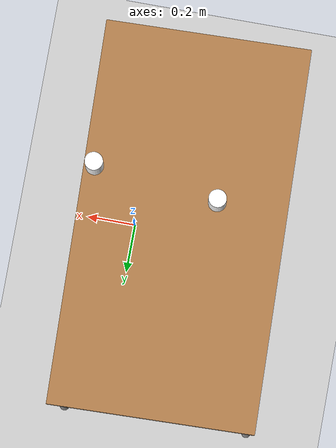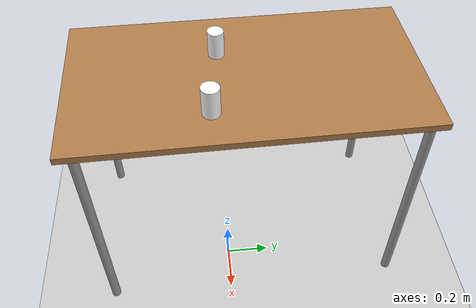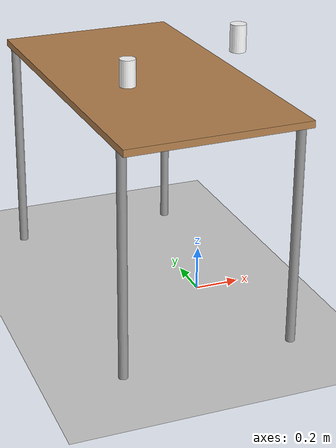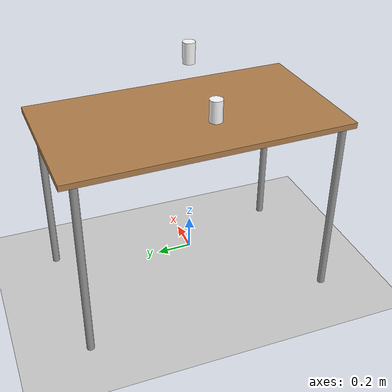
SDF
<sdf version="1.7">
 <world name="default">
  <model name="ground_plane">
   <static>1</static>
   <link name="link">
    <collision name="collision">
     <geometry><plane><normal>0 0 1</normal><size>100 100</size></plane></geometry>
     <surface><friction><ode><mu>100</mu><mu2>50</mu2></ode></friction></surface>
    </collision>
    <visual name="visual">
     <cast_shadows>0</cast_shadows>
     <geometry><plane><normal>0 0 1</normal><size>100 100</size></plane></geometry>
     <material>
      <script><uri>file://media/materials/scripts/gazebo.material</uri><name>Gazebo/Grey</name></script>
     </material>
    </visual>
   </link>
  </model>
  <light name="sun" type="directional">
   <pose>0 0 10 0 -0 0</pose>
   <diffuse>0.8 0.8 0.8 1</diffuse>
   <specular>0.2 0.2 0.2 1</specular>
   <attenuation>
    <range>1000</range>
    <constant>0.9</constant>
    <linear>0.01</linear>
    <quadratic>0.001</quadratic>
   </attenuation>
   <direction>-0.5 0.1 -0.9</direction>
   <spot><inner_angle>0</inner_angle><outer_angle>0</outer_angle><falloff>0</falloff></spot>
  </light>
  <model name="table">
   <static>1</static>
   <link name="link">
    <collision name="surface">
     <pose>0 0 1 0 -0 0</pose>
     <geometry><box><size>1.5 0.8 0.03</size></box></geometry>
     <surface><friction><ode><mu>0.6</mu><mu2>0.6</mu2></ode></friction></surface>
    </collision>
    <visual name="visual1">
     <pose>0 0 1 0 -0 0</pose>
     <geometry><box><size>1.5 0.8 0.03</size></box></geometry>
     <material>
      <script><uri>file://media/materials/scripts/gazebo.material</uri><name>Gazebo/Wood</name></script>
     </material>
    </visual>
    <collision name="front_left_leg">
     <pose>0.68 0.38 0.5 0 -0 0</pose>
     <geometry><cylinder><radius>0.02</radius><length>1</length></cylinder></geometry>
    </collision>
    <visual name="front_left_leg">
     <pose>0.68 0.38 0.5 0 -0 0</pose>
     <geometry><cylinder><radius>0.02</radius><length>1</length></cylinder></geometry>
     <material>
      <script><uri>file://media/materials/scripts/gazebo.material</uri><name>Gazebo/Grey</name></script>
     </material>
    </visual>
    <collision name="front_right_leg">
     <pose>0.68 -0.38 0.5 0 -0 0</pose>
     <geometry><cylinder><radius>0.02</radius><length>1</length></cylinder></geometry>
    </collision>
    <visual name="front_right_leg">
     <pose>0.68 -0.38 0.5 0 -0 0</pose>
     <geometry><cylinder><radius>0.02</radius><length>1</length></cylinder></geometry>
     <material>
      <script><uri>file://media/materials/scripts/gazebo.material</uri><name>Gazebo/Grey</name></script>
     </material>
    </visual>
    <collision name="back_right_leg">
     <pose>-0.68 -0.38 0.5 0 -0 0</pose>
     <geometry><cylinder><radius>0.02</radius><length>1</length></cylinder></geometry>
    </collision>
    <visual name="back_right_leg">
     <pose>-0.68 -0.38 0.5 0 -0 0</pose>
     <geometry><cylinder><radius>0.02</radius><length>1</length></cylinder></geometry>
     <material>
      <script><uri>file://media/materials/scripts/gazebo.material</uri><name>Gazebo/Grey</name></script>
     </material>
    </visual>
    <collision name="back_left_leg">
     <pose>-0.68 0.38 0.5 0 -0 0</pose>
     <geometry><cylinder><radius>0.02</radius><length>1</length></cylinder></geometry>
    </collision>
    <visual name="back_left_leg">
     <pose>-0.68 0.38 0.5 0 -0 0</pose>
     <geometry><cylinder><radius>0.02</radius><length>1</length></cylinder></geometry>
     <material>
      <script><uri>file://media/materials/scripts/gazebo.material</uri><name>Gazebo/Grey</name></script>
     </material>
    </visual>
   </link>
   <pose>-0.209885 0.103367 0 0 0 -1.5446</pose>
  </model>
  <physics type="ode">
   <max_step_size>0.001</max_step_size>
   <real_time_factor>1</real_time_factor>
   <real_time_update_rate>1000</real_time_update_rate>
  </physics>
  <gravity>0 0 0</gravity>
  <magnetic_field>6e-06 2.3e-05 -4.2e-05</magnetic_field>
  <atmosphere type="adiabatic"/>
  <scene><ambient>0.4 0.4 0.4 1</ambient><background>0.7 0.7 0.7 1</background><shadows>1</shadows></scene>
  <audio><device>default</device></audio>
  <spherical_coordinates>
   <surface_model>EARTH_WGS84</surface_model>
   <latitude_deg>0</latitude_deg>
   <longitude_deg>0</longitude_deg>
   <elevation>0</elevation>
   <heading_deg>0</heading_deg>
  </spherical_coordinates>
  <model name="cup_1">
   <static>0</static>
   <link name="link">
    <pose>0 0 0.06 0 -0 0</pose>
    <inertial>
     <mass>0.05</mass>
     <inertia><ixx>0.0001</ixx><iyy>0.0001</iyy><izz>0.0001</izz><ixy>0</ixy><ixz>0</ixz><iyz>0</iyz></inertia>
    </inertial>
    <collision name="collision">
     <geometry><cylinder><radius>0.035</radius><length>0.12</length></cylinder></geometry>
    </collision>
    <visual name="visual">
     <geometry><cylinder><radius>0.035</radius><length>0.12</length></cylinder></geometry>
     <material><ambient>1 1 1 1</ambient><diffuse>1 1 1 1</diffuse></material>
    </visual>
   </link>
   <pose>-0.334998 -0.006673 1.0203 0 -0 0</pose>
  </model>
  <model name="cup_2">
   <static>0</static>
   <link name="link">
    <pose>0 0 0.06 0 -0 0</pose>
    <inertial>
     <mass>0.05</mass>
     <inertia><ixx>0.0001</ixx><iyy>0.0001</iyy><izz>0.0001</izz><ixy>0</ixy><ixz>0</ixz><iyz>0</iyz></inertia>
    </inertial>
    <collision name="collision">
     <geometry><cylinder><radius>0.035</radius><length>0.12</length></cylinder></geometry>
    </collision>
    <visual name="visual">
     <geometry><cylinder><radius>0.035</radius><length>0.12</length></cylinder></geometry>
     <material><ambient>1 1 1 1</ambient><diffuse>1 1 1 1</diffuse></material>
    </visual>
   </link>
   <pose>0.14548 -0.048263 1.13122 0 -0 0</pose>
  </model>
 </world>
</sdf>
